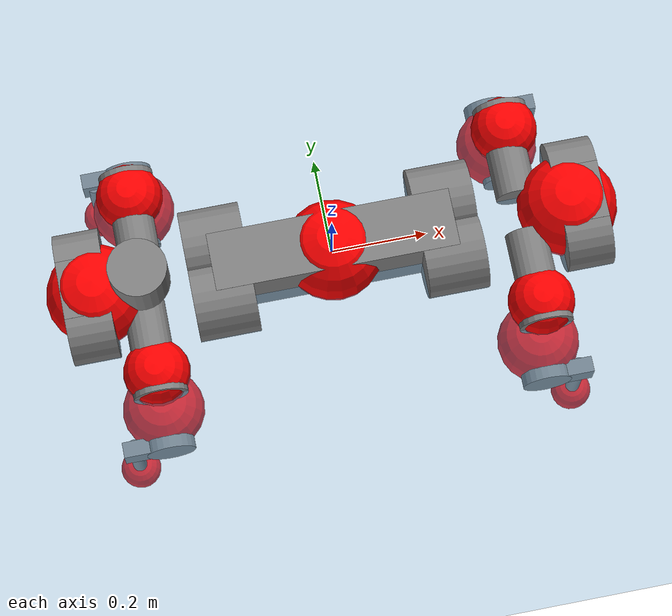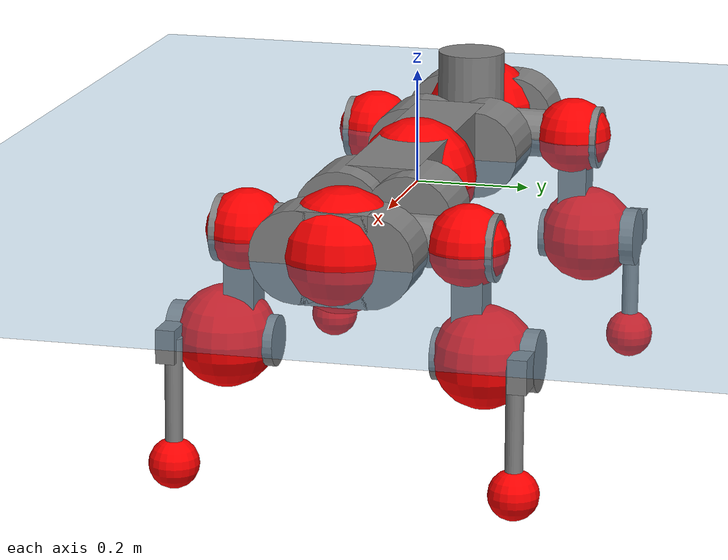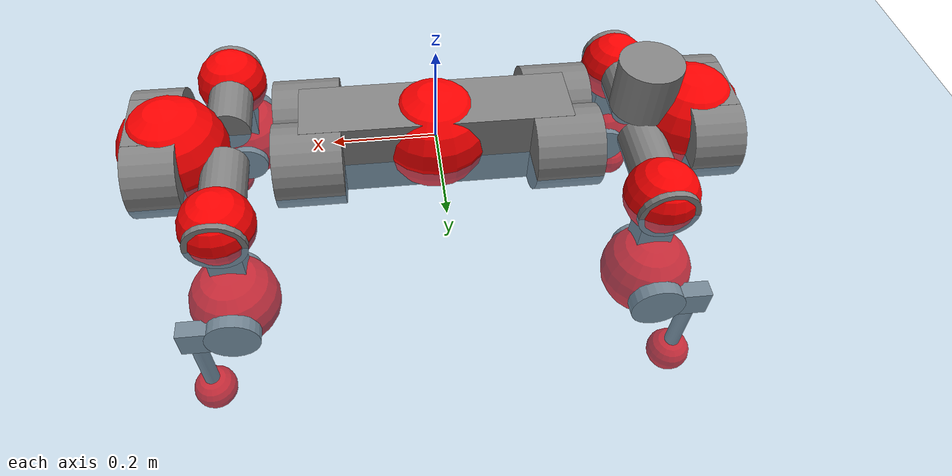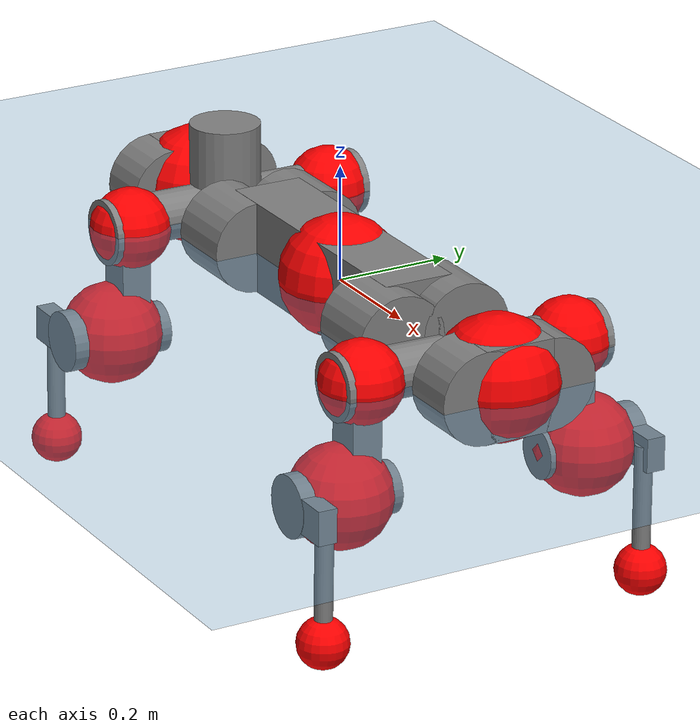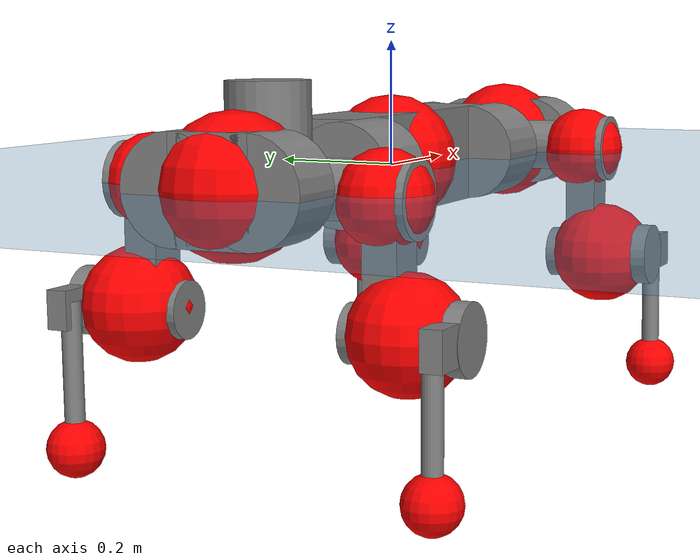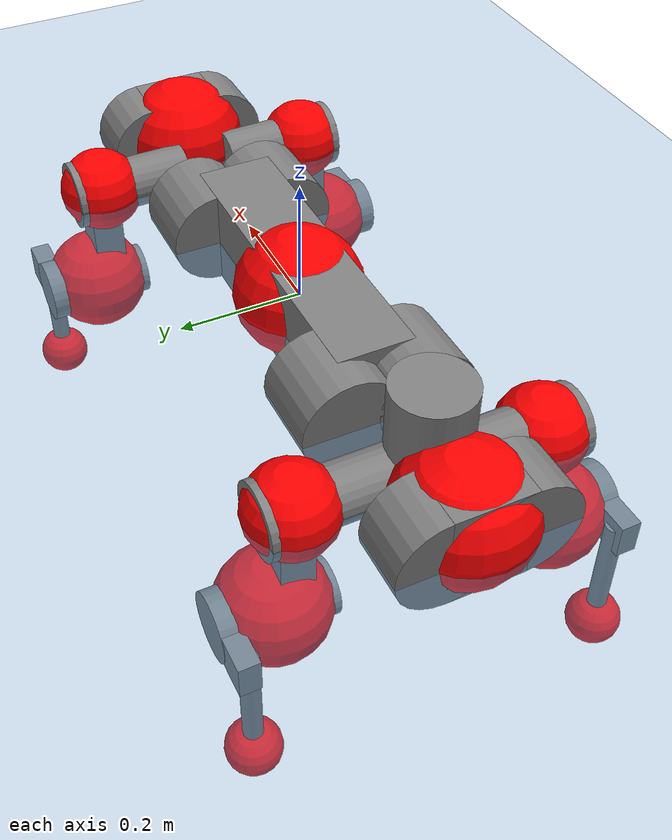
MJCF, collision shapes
<mujoco model="anymal_c">
  <compiler angle="radian" assetdir="assets" balanceinertia="true" inertiafromgeom="false"/>

  <option timestep="0.005" density="1.2" viscosity="2e-05"/>

  <size nkey="1"/>

  <visual>
    <quality shadowsize="8192"/>
    <map shadowclip="0.5"/>
  </visual>

  <default>
    <default class="/">
      <material specular="0" shininess="0.25"/>
      <geom contype="0" conaffinity="0" group="1" solref="-1000 -80"/>
      <site size="0.01 0.005 0.005" group="5"/>
      <general forcelimited="true" forcerange="-80 80" biastype="affine" gainprm="80" biasprm="0 -80 -2"/>
      <default class="anymal_c">
        <joint armature="0.01" damping="0.01" frictionloss="0.1"/>
        <default class="visual">
          <geom type="mesh" group="2"/>
          <default class="visual_zflip"/>
        </default>
        <default class="collision">
          <geom type="cylinder" group="3"/>
          <default class="foot">
            <geom size="0.03 0 0" type="sphere" condim="6" priority="1" friction="0.8 0.02 0.01" solimp="0.015 1 0.03"/>
          </default>
        </default>
      </default>
      <default class="reward_collision_sphere">
        <geom group="5" rgba="1 0 0 1"/>
      </default>
    </default>
  </default>

  <asset>
    <texture type="skybox" colorspace="auto" name="//unnamed_texture_0" builtin="gradient" rgb1="0.95 0.95 0.95" rgb2="0.95 0.95 0.95" width="100" height="600"/>
    <texture type="2d" colorspace="auto" name="texplane" builtin="checker" rgb1="0.345 0.575 0.748" rgb2="0.345 0.575 0.748" markrgb="1 1 1" width="512" height="512"/>
    <texture type="2d" colorspace="linear" name="base" file="base.png"/>
    <texture type="2d" colorspace="linear" name="top_shell" file="top_shell.png"/>
    <texture type="2d" colorspace="linear" name="bottom_shell" file="bottom_shell.png"/>
    <texture type="2d" colorspace="linear" name="remote" file="remote.png"/>
    <texture type="2d" colorspace="linear" name="hatch" file="hatch.png"/>
    <texture type="2d" colorspace="linear" name="handle" file="handle.png"/>
    <texture type="2d" colorspace="linear" name="face" file="face.png"/>
    <texture type="2d" colorspace="linear" name="battery" file="battery.png"/>
    <texture type="2d" colorspace="linear" name="lidar_cage" file="lidar_cage.png"/>
    <texture type="2d" colorspace="linear" name="depth_camera" file="depth_camera.png"/>
    <texture type="2d" colorspace="linear" name="wide_angle_camera" file="wide_angle_camera.png"/>
    <texture type="2d" colorspace="linear" name="lidar" file="lidar.png"/>
    <texture type="2d" colorspace="linear" name="drive" file="drive.png"/>
    <texture type="2d" colorspace="linear" name="hip_l" file="hip_l.png"/>
    <texture type="2d" colorspace="linear" name="shank_l" file="shank_l.png"/>
    <texture type="2d" colorspace="linear" name="foot" file="foot.png"/>
    <texture type="2d" colorspace="linear" name="thigh" file="thigh.png"/>
    <texture type="2d" colorspace="linear" name="shank_r" file="shank_r.png"/>
    <texture type="2d" colorspace="linear" name="hip_r" file="hip_r.png"/>
    <material name="MatPlane" class="/" texture="texplane" texuniform="true" texrepeat="2 2" specular="0.9" shininess="0.5"/>
    <material name="black_plastic" class="/" rgba="0.007 0.007 0.007 1"/>
    <material name="green" class="/" rgba="0.052 0.178 0.033 1"/>
    <material name="red" class="/" rgba="0.178 0.006 0.005 1"/>
    <material name="yellow" class="/" rgba="0.178 0.119 0.006 1"/>
    <material name="lwl" class="/" rgba="0.8 0.8 0.8 1"/>
    <material name="base" class="/" texture="base"/>
    <material name="top_shell" class="/" texture="top_shell"/>
    <material name="bottom_shell" class="/" texture="bottom_shell"/>
    <material name="hip_l" class="/" texture="hip_l"/>
    <material name="thigh" class="/" texture="thigh"/>
    <material name="shank_l" class="/" texture="shank_l"/>
    <material name="foot" class="/" texture="foot"/>
    <material name="hip_r" class="/" texture="hip_r"/>
    <material name="shank" class="/" texture="shank_r"/>
    <material name="hatch" class="/" texture="hatch"/>
    <material name="remote" class="/" texture="remote"/>
    <material name="handle" class="/" texture="handle"/>
    <material name="face" class="/" texture="face"/>
    <material name="depth_camera" class="/" texture="depth_camera"/>
    <material name="wide_angle_camera" class="/" texture="wide_angle_camera"/>
    <material name="battery" class="/" texture="battery"/>
    <material name="lidar_cage" class="/" texture="lidar_cage"/>
    <material name="lidar" class="/" texture="lidar"/>
    <material name="drive" class="/" texture="drive"/>
    <mesh name="base_0" class="/" file="base_0.obj"/>
    <mesh name="base_1" class="/" file="base_1.obj"/>
    <mesh name="base_2" class="/" file="base_2.obj"/>
    <mesh name="base_3" class="/" file="base_3.obj"/>
    <mesh name="base_4" class="/" file="base_4.obj"/>
    <mesh name="base_5" class="/" file="base_5.obj"/>
    <mesh name="top_shell" class="/" file="top_shell.obj"/>
    <mesh name="bottom_shell" class="/" file="bottom_shell.obj"/>
    <mesh name="remote" class="/" file="remote.obj"/>
    <mesh name="handle" class="/" file="handle.obj"/>
    <mesh name="face" class="/" file="face.obj"/>
    <mesh name="wide_angle_camera" class="/" file="wide_angle_camera.obj"/>
    <mesh name="depth_camera" class="/" file="depth_camera.obj"/>
    <mesh name="battery" class="/" file="battery.obj"/>
    <mesh name="lidar_cage" class="/" file="lidar_cage.obj"/>
    <mesh name="lidar" class="/" file="lidar.obj"/>
    <mesh name="drive" class="/" file="drive.obj"/>
    <mesh name="hip_l" class="/" file="hip_l.obj"/>
    <mesh name="thigh" class="/" file="thigh.obj"/>
    <mesh name="shank_l" class="/" file="shank_l.obj"/>
    <mesh name="foot" class="/" file="foot.obj"/>
    <mesh name="hip_r" class="/" file="hip_r.obj"/>
    <mesh name="hatch" class="/" file="hatch.obj"/>
    <mesh name="shank_r" class="/" file="shank_r.obj"/>
  </asset>

  <worldbody>
    <geom name="floor" class="/" size="100 100 0.125" type="plane" group="0" material="MatPlane"/>
    <light name="toplight_shadow" class="/" pos="0 0 5" dir="0.0990148 0.0990148 -0.990148" type="directional" ambient="0.04 0.04 0.04" diffuse="0.55 0.55 0.55" specular="0.12 0.12 0.12"/>
    <light name="toplight_fill" class="/" pos="0 0 5" dir="0.0990148 0.0990148 -0.990148" type="directional" castshadow="false" ambient="0.04 0.04 0.04" diffuse="0.3 0.3 0.3" specular="0.08 0.08 0.08"/>
    <body name="trunk" childclass="anymal_c" pos="0.0021108 0.000210128 0.00800995" quat="0.999994 -0.00332415 -0.000965099 0.000586677">
      <inertial pos="0.00428096 -0.00532899 0.0285954" quat="0.481613 0.484701 0.517921 0.514657" mass="12.2608" diaginertia="0.941519 0.256644 0.0264505"/>
      <joint name="//unnamed_joint_0" type="free" armature="0" damping="0" frictionloss="0"/>
      <geom name="//unnamed_geom_1" class="visual" material="green" mesh="base_0"/>
      <geom name="//unnamed_geom_2" class="visual" material="yellow" mesh="base_1"/>
      <geom name="//unnamed_geom_3" class="visual" material="red" mesh="base_2"/>
      <geom name="//unnamed_geom_4" class="visual" material="black_plastic" mesh="base_3"/>
      <geom name="//unnamed_geom_5" class="visual" material="lwl" mesh="base_4"/>
      <geom name="//unnamed_geom_6" class="visual" material="base" mesh="base_5"/>
      <geom name="trunk_1" class="collision" size="0.255275 0.0616182 0.0792234" type="box"/>
      <geom name="trunk_2" class="collision" size="0.0792234 0.0638188" pos="0.241845 0.0602212 0" quat="0.707107 0 0.707107 0"/>
      <geom name="trunk_3" class="collision" size="0.0792234 0.0638188" pos="-0.241845 0.0602212 0" quat="0.707107 0 0.707107 0"/>
      <geom name="trunk_4" class="collision" size="0.0792234 0.0638188" pos="0.241845 -0.0602212 0" quat="0.707107 0 0.707107 0"/>
      <geom name="trunk_5" class="collision" size="0.0792234 0.0638188" pos="-0.241845 -0.0602212 0" quat="0.707107 0 0.707107 0"/>
      <geom name="//unnamed_geom_12" class="visual" material="top_shell" mesh="top_shell"/>
      <geom name="//unnamed_geom_13" class="visual" material="bottom_shell" mesh="bottom_shell"/>
      <geom name="//unnamed_geom_14" class="visual" material="remote" mesh="remote"/>
      <geom name="//unnamed_geom_15" class="visual" material="handle" mesh="handle"/>
      <geom name="//unnamed_geom_16" class="visual" pos="0.460895 0 0" quat="1 0 0 0" material="face" mesh="face"/>
      <geom name="trunk_6" class="collision" size="0.0484143 0.0616182 0.0792234" pos="0.522052 0 0" type="box"/>
      <geom name="//unnamed_geom_18" class="collision" size="0.0792234 0.0484143" pos="0.522052 0.0602212 0" quat="0.707107 0 0.707107 0"/>
      <geom name="//unnamed_geom_19" class="collision" size="0.0792234 0.0484143" pos="0.522052 -0.0602212 0" quat="0.707107 0 0.707107 0"/>
      <geom name="//unnamed_geom_20" class="visual" pos="0.513305 0 -0.0161518" quat="0.965926 0 0.258819 0" material="depth_camera" mesh="depth_camera"/>
      <geom name="//unnamed_geom_21" class="visual" pos="0.570421 0 0.0100081" material="wide_angle_camera" mesh="wide_angle_camera"/>
      <geom name="//unnamed_geom_22" class="visual_zflip" pos="-0.460895 0 0" quat="0 0 0 1" material="face" mesh="face"/>
      <geom name="trunk_7" class="collision" size="0.0484143 0.0616182 0.0792234" pos="-0.522052 0 0" quat="0 0 0 1" type="box"/>
      <geom name="//unnamed_geom_24" class="collision" size="0.0792234 0.0484143" pos="-0.522052 -0.0602212 0" quat="0 -0.707107 0 0.707107"/>
      <geom name="//unnamed_geom_25" class="collision" size="0.0792234 0.0484143" pos="-0.522052 0.0602212 0" quat="0 -0.707107 0 0.707107"/>
      <geom name="//unnamed_geom_26" class="visual" pos="-0.513305 0 -0.0161518" quat="0 -0.258819 0 0.965926" material="depth_camera" mesh="depth_camera"/>
      <geom name="//unnamed_geom_27" class="visual_zflip" pos="-0.570421 0 0.0100081" quat="0 0 0 1" material="wide_angle_camera" mesh="wide_angle_camera"/>
      <geom name="//unnamed_geom_28" class="visual" material="battery" mesh="battery"/>
      <geom name="//unnamed_geom_29" class="visual" pos="0 0.0624584 0.022791" quat="0.683013 -0.183013 0.183013 0.683013" material="depth_camera" mesh="depth_camera"/>
      <geom name="//unnamed_geom_30" class="visual" pos="0 -0.0624584 0.022791" quat="0.683013 0.183013 0.183013 -0.683013" material="depth_camera" mesh="depth_camera"/>
      <geom name="//unnamed_geom_31" class="visual" pos="-0.404743 0 0.0491381" quat="1 0 0 0" material="lidar_cage" mesh="lidar_cage"/>
      <geom name="trunk_8" class="collision" size="0.0616182 0.0528156" pos="-0.404743 0 0.0892509"/>
      <geom name="//unnamed_geom_33" class="visual" pos="-0.404743 -9.88583e-05 0.0950673" quat="0.707107 0 0 -0.707107" material="lidar" mesh="lidar"/>
      <geom name="//unnamed_geom_34" class="visual" pos="0.333468 0.0894033 3.30781e-09" quat="0.258819 0.965926 0 0" material="drive" mesh="drive"/>
      <geom name="//unnamed_geom_35" class="visual" pos="0.333468 -0.0894033 -3.30781e-09" quat="0.258819 -0.965926 0 0" material="drive" mesh="drive"/>
      <geom name="//unnamed_geom_36" class="visual" pos="-0.333468 0.0894033 -3.30781e-09" quat="0 0 0.965926 -0.258819" material="drive" mesh="drive"/>
      <geom name="//unnamed_geom_37" class="visual" pos="-0.333468 -0.0894033 3.30781e-09" quat="0 0 -0.965926 -0.258819" material="drive" mesh="drive"/>
      <geom name="//unnamed_geom_38" class="visual" pos="0.128984 0 0.0488039" quat="1 0 0 0" material="hatch" mesh="hatch"/>
      <geom name="//unnamed_geom_39" class="reward_collision_sphere" size="0.105631"/>
      <geom name="//unnamed_geom_40" class="reward_collision_sphere" size="0.105631" pos="0.500369 0 0"/>
      <geom name="//unnamed_geom_41" class="reward_collision_sphere" size="0.105631" pos="-0.500369 0 0"/>
      <site name="imu" pos="0.285258 -0.00468608 0.0544824" size="0.0088026"/>
      <camera name="track" pos="0 -1.7206 0" quat="0.707107 0.707107 0 0" mode="trackcom"/>
      <camera name="ego_camera" pos="0.500369 0 -0.0267418" quat="-0.5 -0.5 0.5 0.5"/>
      <body name="LF_HIP" pos="0.334989 0.0901934 -0.00163642" quat="0.259259 0.965808 -4.74387e-05 0.000335608">
        <inertial pos="0.0695103 -0.0122848 0.00208484" quat="-0.166116 0.7036 -0.132268 0.678128" mass="1.96594" diaginertia="0.00970421 0.00235826 0.000451551"/>
        <joint name="LF_HAA" pos="0 0 0" axis="0.999562 0.0128216 0.0266677" stiffness="0.0178705" range="-0.736544 0.452979" armature="0.0088067" damping="0.0277379" frictionloss="0.0801889"/>
        <geom name="//unnamed_geom_42" class="visual" pos="0 0.000194584 -3.19602e-05" quat="0.258819 -0.965926 0 0" material="hip_l" mesh="hip_l"/>
        <geom name="//unnamed_geom_43" class="visual" pos="0.0666047 -0.0773245 -0.043225" quat="0.183013 -0.683013 0.683013 0.183013" material="drive" mesh="drive"/>
        <geom name="//unnamed_geom_44" class="collision" size="0.044013 0.0616182" pos="0.0666047 -0.010289 -0.00461631" quat="-0.353553 -0.612372 0.612372 -0.353553"/>
        <body name="LF_THIGH" pos="0.0716853 -0.0647295 -0.034262" quat="0.183492 -0.683178 0.682659 0.183235">
          <inertial pos="0.0345099 0.00100363 -0.166053" quat="0.993104 -0.00280795 -0.0805529 0.0851384" mass="2.28882" diaginertia="0.0563511 0.0151729 0.000638467"/>
          <joint name="LF_HFE" pos="0 0 0" axis="0.99999 0.00244469 -0.00368918" stiffness="0.00668239" range="-3.10053 3.13881" armature="0.0103759" damping="0" frictionloss="0.087778"/>
          <geom name="//unnamed_geom_45" class="visual" pos="0.00500643 7.88896e-06 0" quat="0.707107 0 0 -0.707107" material="thigh" mesh="thigh"/>
          <geom name="//unnamed_geom_46" class="collision" size="0.0572169 0.0352104" pos="0.0444772 0 0" quat="0.5 0.5 -0.5 -0.5"/>
          <geom name="//unnamed_geom_47" class="collision" size="0.0330097 0.0264078 0.124393" pos="0.0333579 0 -0.0944749" quat="0.707107 0 0 -0.707107" type="box"/>
          <geom name="//unnamed_geom_48" class="visual" pos="0.111527 0 -0.190536" quat="1 0 0 0" material="drive" mesh="drive"/>
          <geom name="//unnamed_geom_49" class="collision" size="0.044013 0.0616182" pos="0.0336915 0 -0.190536" quat="0.707107 0 0.707107 0"/>
          <geom name="//unnamed_geom_50" class="reward_collision_sphere" size="0.0704208" pos="0.0277983 0 0"/>
          <body name="LF_SHANK" pos="0.113157 -0.0018079 -0.188589" quat="1 -2.45308e-05 6.04329e-05 -2.22618e-05">
            <inertial pos="0.0152191 -0.0453445 -0.054426" quat="0.991923 -0.12317 -0.00472054 -0.0299251" mass="0.395657" diaginertia="0.0183414 0.00437634 0.000145772"/>
            <joint name="LF_KFE" pos="0 0 0" axis="0.999966 -0.0019365 0.00795401" range="-2.96223 3.09261" armature="0.0085609" damping="0.00349153" frictionloss="0.051071"/>
            <geom name="//unnamed_geom_51" class="visual" pos="0.00163249 0.0087045 0" quat="0.707107 0 0 -0.707107" material="shank_l" mesh="shank_l"/>
            <geom name="LF_kfe_act" class="collision" size="0.0528156 0.0176052" pos="0.0222386 0 0" quat="0.5 0.5 -0.5 -0.5"/>
            <geom name="//unnamed_geom_53" class="collision" size="0.0506141 0.0297088 0.0167249" pos="0.0222386 -0.0494665 0" quat="0.5 0.5 -0.5 -0.5" type="box"/>
            <geom name="//unnamed_geom_54" class="visual" pos="0.0145103 -0.0728585 -0.225949" quat="0.382683 0 0 -0.92388" material="foot" mesh="foot"/>
            <geom name="LF_calf" class="collision" size="0.0154045 0.124338" pos="0.0145107 -0.0756636 -0.112974" quat="0.707107 0 0 -0.707107"/>
            <geom name="LF_foot" class="foot" size="0.0316373" pos="0.0145107 -0.0756636 -0.210906" quat="0.707107 0 0 -0.707107"/>
            <geom name="//unnamed_geom_57" class="reward_collision_sphere" size="0.088026" pos="-0.0555966 0 0"/>
            <geom name="//unnamed_geom_58" class="reward_collision_sphere" size="0.044013" pos="0.0145107 -0.0756636 -0.210906"/>
            <site name="LF_foot" class="foot" pos="0.0145107 -0.0756636 -0.210906" quat="0.707107 0 0 -0.707107" size="0.0088026"/>
          </body>
        </body>
      </body>
      <body name="RF_HIP" pos="0.335691 -0.0922215 0.000448337" quat="0.254859 -0.966978 0.00108716 0.000304378">
        <inertial pos="0.0634169 0.0139504 -0.00526846" quat="0.109784 0.663611 0.109752 0.731794" mass="1.68928" diaginertia="0.0101125 0.0022646 0.000447462"/>
        <joint name="RF_HAA" pos="0 0 0" axis="0.999947 -0.00738567 0.00716788" stiffness="0.0248291" range="-0.332554 0.757467" armature="0.00927132" damping="0.0227814" frictionloss="0.0744624"/>
        <geom name="//unnamed_geom_59" class="visual" pos="0 -0.000194582 -3.19601e-05" quat="0.258819 0.965926 0 0" material="hip_r" mesh="hip_r"/>
        <geom name="//unnamed_geom_60" class="visual" pos="0.0666047 0.0773245 -0.043225" quat="0.183013 0.683013 0.683013 -0.183013" material="drive" mesh="drive"/>
        <geom name="//unnamed_geom_61" class="collision" size="0.044013 0.0616182" pos="0.0666047 0.010289 -0.00461631" quat="-0.353553 0.612372 0.612372 0.353553"/>
        <body name="RF_THIGH" pos="0.068262 0.0648618 -0.0303267" quat="0.183504 0.682922 0.683054 -0.182708">
          <inertial pos="0.0355445 0.000380464 -0.164395" quat="0.992272 -0.00517716 -0.0845293 0.0906882" mass="1.99246" diaginertia="0.0529839 0.0151117 0.000557919"/>
          <joint name="RF_HFE" pos="0 0 0" axis="0.999999 0.000881544 -0.000549976" range="-3.15436 3.18448" armature="0.00921267" damping="0.051223" frictionloss="0.109301"/>
          <geom name="//unnamed_geom_62" class="visual" pos="0.00500643 7.88896e-06 0" quat="0.707107 0 0 -0.707107" material="thigh" mesh="thigh"/>
          <geom name="//unnamed_geom_63" class="collision" size="0.0572169 0.0352104" pos="0.0444772 0 0" quat="0.5 0.5 0.5 0.5"/>
          <geom name="//unnamed_geom_64" class="collision" size="0.0330097 0.0264078 0.124393" pos="0.0333579 0 -0.0944749" quat="0.707107 0 0 0.707107" type="box"/>
          <geom name="//unnamed_geom_65" class="visual" pos="0.111527 0 -0.190536" quat="1 0 0 0" material="drive" mesh="drive"/>
          <geom name="//unnamed_geom_66" class="collision" size="0.044013 0.0616182" pos="0.0336915 0 -0.190536" quat="0.707107 0 0.707107 0"/>
          <geom name="//unnamed_geom_67" class="reward_collision_sphere" size="0.0704208" pos="0.0277983 0 0"/>
          <body name="RF_SHANK" pos="0.119096 0.000185776 -0.188545" quat="1 -0.000338902 0.000600075 -0.000346861">
            <inertial pos="0.00514138 0.0594119 -0.058735" quat="0.993172 0.0972848 -0.011944 0.0632578" mass="0.424905" diaginertia="0.0182734 0.00436543 0.00016816"/>
            <joint name="RF_KFE" pos="0 0 0" axis="0.999994 0.00163706 -0.00317011" range="-3.13015 3.09582" armature="0.00896255" damping="0.0250652" frictionloss="0.0940688"/>
            <geom name="//unnamed_geom_68" class="visual" pos="0.00163248 -0.00870448 0" quat="0.707107 0 0 0.707107" material="shank" mesh="shank_r"/>
            <geom name="RF_kfe_act" class="collision" size="0.0528156 0.0176052" pos="0.0222386 0 0" quat="0.5 0.5 0.5 0.5"/>
            <geom name="//unnamed_geom_70" class="collision" size="0.0506141 0.0297088 0.0167249" pos="0.0222386 0.0494665 0" quat="0.5 0.5 0.5 0.5" type="box"/>
            <geom name="//unnamed_geom_71" class="visual" pos="0.0145111 0.0728585 -0.225949" quat="0.382683 0 0 0.92388" material="foot" mesh="foot"/>
            <geom name="RF_calf" class="collision" size="0.0154045 0.124338" pos="0.0145107 0.0756636 -0.112974" quat="0.707107 0 0 0.707107"/>
            <geom name="RF_foot" class="foot" size="0.0327943" pos="0.0145107 0.0756636 -0.210906" quat="0.707107 0 0 0.707107"/>
            <geom name="//unnamed_geom_74" class="reward_collision_sphere" size="0.088026" pos="-0.0555966 0 0"/>
            <geom name="//unnamed_geom_75" class="reward_collision_sphere" size="0.044013" pos="0.0145107 0.0756636 -0.210906"/>
            <site name="RF_foot" class="foot" pos="0.0145107 0.0756636 -0.210906" quat="0.707107 0 0 0.707107" size="0.0088026"/>
          </body>
        </body>
      </body>
      <body name="LH_HIP" pos="-0.332498 0.0929442 -0.00349888" quat="0.000350946 -2.49533e-05 0.966011 -0.258501">
        <inertial pos="0.0625257 0.0196442 0.00252961" quat="0.134872 0.678077 0.128663 0.710962" mass="1.89918" diaginertia="0.0104146 0.00237422 0.00047807"/>
        <joint name="LH_HAA" pos="0 0 0" axis="0.999573 -0.0111129 -0.0270306" stiffness="0.00779101" range="-0.370723 0.584341" armature="0.00624842" damping="0.0237852" frictionloss="0.089776"/>
        <geom name="//unnamed_geom_76" class="visual" pos="0 -0.000194582 -3.19601e-05" quat="-0.258819 -0.965926 0 0" material="hip_r" mesh="hip_r"/>
        <geom name="//unnamed_geom_77" class="visual" pos="0.0666047 0.0773245 -0.043225" quat="0.183013 0.683013 0.683013 -0.183013" material="drive" mesh="drive"/>
        <geom name="//unnamed_geom_78" class="collision" size="0.044013 0.0616182" pos="0.0666047 0.010289 -0.00461631" quat="-0.353553 0.612372 0.612372 0.353553"/>
        <body name="LH_THIGH" pos="0.0653013 0.0679584 -0.0368435" quat="0.182453 0.684447 0.681699 -0.183112">
          <inertial pos="0.0255146 0.00409375 -0.155631" quat="0.992724 -0.00554763 -0.0809809 0.0889437" mass="1.80898" diaginertia="0.0414777 0.0127798 0.000472365"/>
          <joint name="LH_HFE" pos="0 0 0" axis="0.999099 -0.00947959 0.0413579" range="-3.07988 3.17427" armature="0.00915113" damping="0.051058" frictionloss="0.0837699"/>
          <geom name="//unnamed_geom_79" class="visual" pos="0.00500643 7.88896e-06 0" quat="0.707107 0 0 -0.707107" material="thigh" mesh="thigh"/>
          <geom name="//unnamed_geom_80" class="collision" size="0.0572169 0.0352104" pos="0.0444772 0 0" quat="0.5 0.5 -0.5 -0.5"/>
          <geom name="//unnamed_geom_81" class="collision" size="0.0330097 0.0264078 0.124393" pos="0.0333579 0 -0.0944749" quat="0.707107 0 0 -0.707107" type="box"/>
          <geom name="//unnamed_geom_82" class="visual" pos="0.111527 0 -0.190536" quat="1 0 0 0" material="drive" mesh="drive"/>
          <geom name="//unnamed_geom_83" class="collision" size="0.044013 0.0616182" pos="0.0336915 0 -0.190536" quat="0.707107 0 0.707107 0"/>
          <geom name="//unnamed_geom_84" class="reward_collision_sphere" size="0.0704208" pos="0.0277983 0 0"/>
          <body name="LH_SHANK" pos="0.113975 -1.3862e-05 -0.186174" quat="0.999997 -0.00138611 0.00160895 -0.00109723">
            <inertial pos="0.0137458 0.0490339 -0.0456532" quat="0.996182 0.0862153 -0.00576272 0.0124629" mass="0.430696" diaginertia="0.0179678 0.00465587 0.000155334"/>
            <joint name="LH_KFE" pos="0 0 0" axis="0.999946 0.00206967 0.0102011" range="-3.10795 3.32198" armature="0.00589997" damping="0.0471384" frictionloss="0.0894215"/>
            <geom name="//unnamed_geom_85" class="visual" pos="0.00163248 -0.00870448 0" quat="-0.707107 0 0 -0.707107" material="shank" mesh="shank_r"/>
            <geom name="LH_kfe_act" class="collision" size="0.0528156 0.0176052" pos="0.0222386 0 0" quat="0.5 0.5 -0.5 -0.5"/>
            <geom name="//unnamed_geom_87" class="collision" size="0.0506141 0.0297088 0.0167249" pos="0.0222386 0.0494665 0" quat="0.5 0.5 -0.5 -0.5" type="box"/>
            <geom name="//unnamed_geom_88" class="visual" pos="0.0145111 0.0728585 -0.225949" quat="-0.382683 0 0 -0.92388" material="foot" mesh="foot"/>
            <geom name="LH_calf" class="collision" size="0.0154045 0.124338" pos="0.0145107 0.0756636 -0.112974" quat="0.707107 0 0 -0.707107"/>
            <geom name="LH_foot" class="foot" size="0.0254689" pos="0.0145107 0.0756636 -0.210906" quat="0.707107 0 0 -0.707107"/>
            <geom name="//unnamed_geom_91" class="reward_collision_sphere" size="0.088026" pos="-0.0555966 0 0"/>
            <geom name="//unnamed_geom_92" class="reward_collision_sphere" size="0.044013" pos="0.0145107 0.0756636 -0.210906"/>
            <site name="LH_foot" class="foot" pos="0.0145107 0.0756636 -0.210906" quat="0.707107 0 0 -0.707107" size="0.0088026"/>
          </body>
        </body>
      </body>
      <body name="RH_HIP" pos="-0.342418 -0.087841 -0.00670722" quat="0.000283526 -6.97818e-05 -0.965907 -0.258891">
        <inertial pos="0.0680769 -0.0106064 -0.00565944" quat="-0.106029 0.693504 -0.138071 0.699104" mass="1.90333" diaginertia="0.00813904 0.00212026 0.000386494"/>
        <joint name="RH_HAA" pos="0 0 0" axis="0.998973 0.0231984 0.038917" stiffness="0.00428236" range="-0.699601 0.503963" armature="0.00883943" damping="0.0117058" frictionloss="0.0490426"/>
        <geom name="//unnamed_geom_93" class="visual" pos="0 0.000194584 -3.19602e-05" quat="-0.258819 0.965926 0 0" material="hip_l" mesh="hip_l"/>
        <geom name="//unnamed_geom_94" class="visual" pos="0.0666047 -0.0773245 -0.043225" quat="-0.183013 0.683013 -0.683013 -0.183013" material="drive" mesh="drive"/>
        <geom name="//unnamed_geom_95" class="collision" size="0.044013 0.0616182" pos="0.0666047 -0.010289 -0.00461631" quat="0.353553 0.612372 -0.612372 0.353553"/>
        <body name="RH_THIGH" pos="0.0646573 -0.0635096 -0.0237766" quat="-0.182518 0.683491 -0.682424 -0.183915">
          <inertial pos="0.0337036 0.00179966 -0.157934" quat="0.992885 -0.00463988 -0.0932508 0.0739007" mass="2.30268" diaginertia="0.0473349 0.0138613 0.000564174"/>
          <joint name="RH_HFE" pos="0 0 0" axis="0.99999 -0.00274342 -0.00357791" stiffness="0.00576587" range="-3.11899 3.23345" armature="0.0090485" damping="0.00484951" frictionloss="0.0834125"/>
          <geom name="//unnamed_geom_96" class="visual" pos="0.00500643 7.88896e-06 0" quat="0.707107 0 0 -0.707107" material="thigh" mesh="thigh"/>
          <geom name="//unnamed_geom_97" class="collision" size="0.0572169 0.0352104" pos="0.0444772 0 0" quat="0.5 0.5 0.5 0.5"/>
          <geom name="//unnamed_geom_98" class="collision" size="0.0330097 0.0264078 0.124393" pos="0.0333579 0 -0.0944749" quat="0.707107 0 0 0.707107" type="box"/>
          <geom name="//unnamed_geom_99" class="visual" pos="0.111527 0 -0.190536" quat="1 0 0 0" material="drive" mesh="drive"/>
          <geom name="//unnamed_geom_100" class="collision" size="0.044013 0.0616182" pos="0.0336915 0 -0.190536" quat="0.707107 0 0.707107 0"/>
          <geom name="//unnamed_geom_101" class="reward_collision_sphere" size="0.0704208" pos="0.0277983 0 0"/>
          <body name="RH_SHANK" pos="0.118863 -0.0044538 -0.186419" quat="0.99999 -0.00450352 0.000463383 0.000574893">
            <inertial pos="0.00659279 -0.0517503 -0.0550731" quat="0.991444 -0.123242 -0.033909 -0.0264816" mass="0.379928" diaginertia="0.0163057 0.0041173 0.000157366"/>
            <joint name="RH_KFE" pos="0 0 0" axis="0.999095 -0.0350149 -0.0241602" stiffness="0.0341733" range="-3.25714 3.11722" armature="0.00904459" damping="0.0378892" frictionloss="0.0838498"/>
            <geom name="//unnamed_geom_102" class="visual" pos="0.00163249 0.0087045 0" quat="0.707107 0 0 -0.707107" material="shank_l" mesh="shank_l"/>
            <geom name="RH_kfe_act" class="collision" size="0.0528156 0.0176052" pos="0.0222386 0 0" quat="0.5 0.5 0.5 0.5"/>
            <geom name="//unnamed_geom_104" class="collision" size="0.0506141 0.0297088 0.0167249" pos="0.0222386 -0.0494665 0" quat="0.5 0.5 0.5 0.5" type="box"/>
            <geom name="//unnamed_geom_105" class="visual" pos="0.0145103 -0.0728585 -0.225949" quat="0.382683 0 0 -0.92388" material="foot" mesh="foot"/>
            <geom name="RH_calf" class="collision" size="0.0154045 0.124338" pos="0.0145107 -0.0756636 -0.112974" quat="0.707107 0 0 0.707107"/>
            <geom name="RH_foot" class="foot" size="0.0246389" pos="0.0145107 -0.0756636 -0.210906" quat="0.707107 0 0 0.707107"/>
            <geom name="//unnamed_geom_108" class="reward_collision_sphere" size="0.088026" pos="-0.0555966 0 0"/>
            <geom name="//unnamed_geom_109" class="reward_collision_sphere" size="0.044013" pos="0.0145107 -0.0756636 -0.210906"/>
            <site name="RH_foot" class="foot" pos="0.0145107 -0.0756636 -0.210906" quat="0.707107 0 0 0.707107" size="0.0088026"/>
          </body>
        </body>
      </body>
    </body>
  </worldbody>

  <contact>
    <pair class="/" geom1="floor" geom2="LF_foot" name="//unnamed_contact_0"/>
    <pair class="/" geom1="floor" geom2="RF_foot" name="//unnamed_contact_1"/>
    <pair class="/" geom1="floor" geom2="LH_foot" name="//unnamed_contact_2"/>
    <pair class="/" geom1="floor" geom2="RH_foot" name="//unnamed_contact_3"/>
  </contact>

  <actuator>
    <general name="LF_HAA" class="/" joint="LF_HAA" forcerange="-70.0585 70.0585" gainprm="72.5125" biasprm="0 -72.5125 -2.12352"/>
    <general name="LF_HFE" class="/" joint="LF_HFE" forcerange="-75.7301 75.7301" gainprm="72.5125" biasprm="0 -72.5125 -2.12352"/>
    <general name="LF_KFE" class="/" joint="LF_KFE" forcerange="-64.6724 64.6724" gainprm="72.5125" biasprm="0 -72.5125 -2.12352"/>
    <general name="RF_HAA" class="/" joint="RF_HAA" forcerange="-65.7498 65.7498" gainprm="72.5125" biasprm="0 -72.5125 -2.12352"/>
    <general name="RF_HFE" class="/" joint="RF_HFE" forcerange="-65.7987 65.7987" gainprm="72.5125" biasprm="0 -72.5125 -2.12352"/>
    <general name="RF_KFE" class="/" joint="RF_KFE" forcerange="-69.0785 69.0785" gainprm="72.5125" biasprm="0 -72.5125 -2.12352"/>
    <general name="LH_HAA" class="/" joint="LH_HAA" forcerange="-69.2854 69.2854" gainprm="72.5125" biasprm="0 -72.5125 -2.12352"/>
    <general name="LH_HFE" class="/" joint="LH_HFE" forcerange="-91.2631 91.2631" gainprm="72.5125" biasprm="0 -72.5125 -2.12352"/>
    <general name="LH_KFE" class="/" joint="LH_KFE" forcerange="-53.2633 53.2633" gainprm="72.5125" biasprm="0 -72.5125 -2.12352"/>
    <general name="RH_HAA" class="/" joint="RH_HAA" forcerange="-71.3007 71.3007" gainprm="72.5125" biasprm="0 -72.5125 -2.12352"/>
    <general name="RH_HFE" class="/" joint="RH_HFE" forcerange="-70.4183 70.4183" gainprm="72.5125" biasprm="0 -72.5125 -2.12352"/>
    <general name="RH_KFE" class="/" joint="RH_KFE" forcerange="-63.6942 63.6942" gainprm="72.5125" biasprm="0 -72.5125 -2.12352"/>
  </actuator>

  <sensor>
    <gyro site="imu" name="imu_angular_velocity"/>
    <velocimeter site="imu" name="imu_linear_velocity"/>
    <framelinvel objtype="site" objname="LF_foot" name="LF_foot_global_linear_velocity"/>
    <framelinvel objtype="site" objname="RF_foot" name="RF_foot_global_linear_velocity"/>
    <framelinvel objtype="site" objname="LH_foot" name="LH_foot_global_linear_velocity"/>
    <framelinvel objtype="site" objname="RH_foot" name="RH_foot_global_linear_velocity"/>
  </sensor>

  <keyframe>
    <key name="home" qpos="0 0 0.55 1 0 0 0 0 0.4 -0.8 0 -0.4 0.8 0 -0.4 0.8 0 0.4 -0.8"/>
  </keyframe>
</mujoco>
